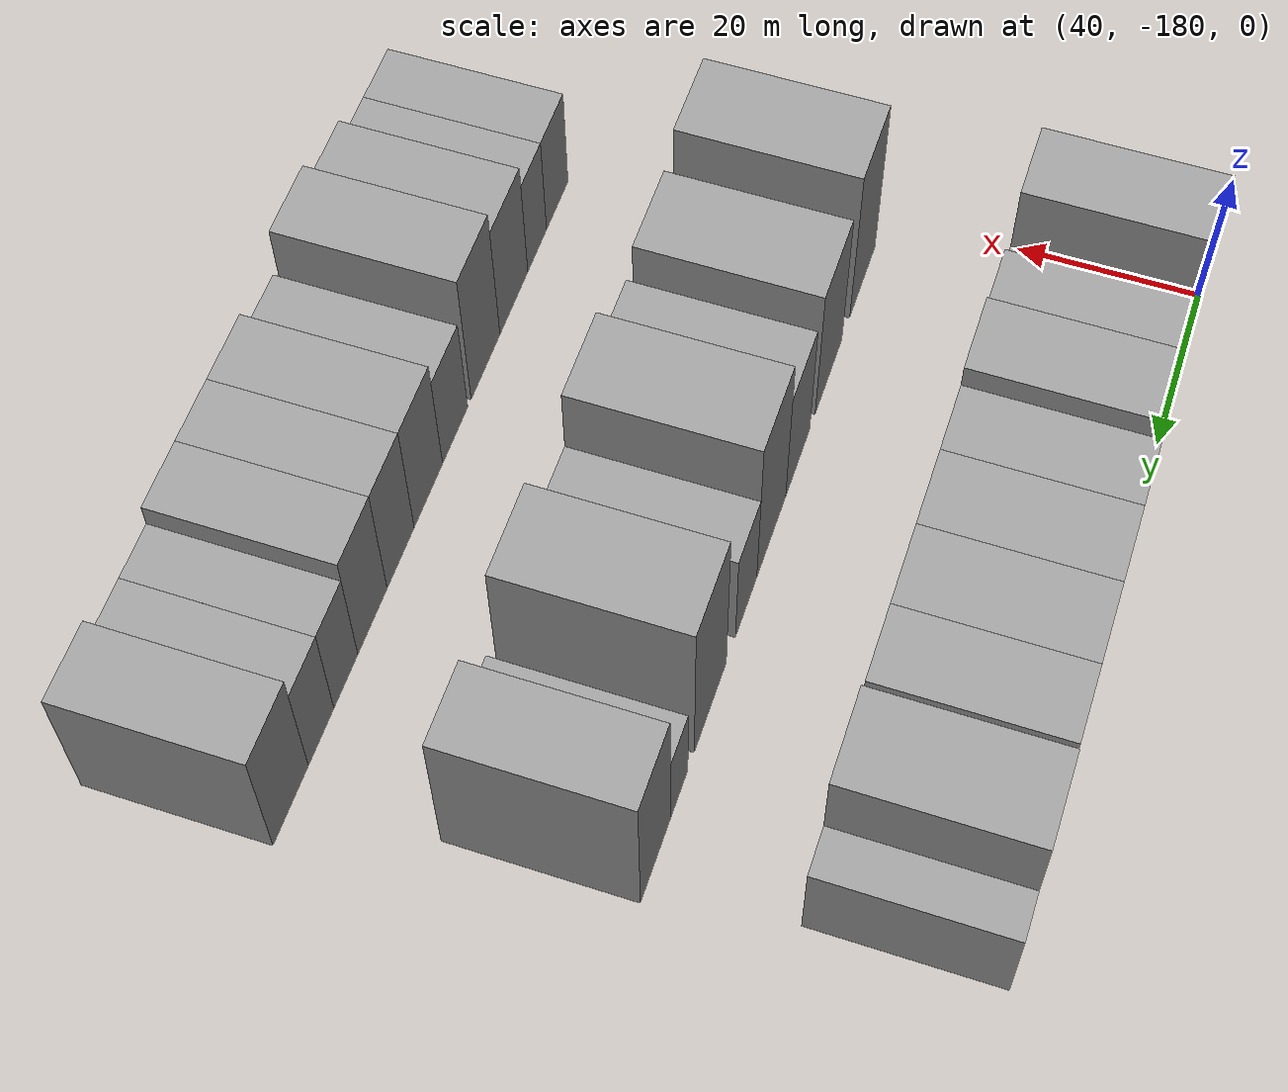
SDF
<sdf version="1.6">
 <world name="default">
  <model name="building_23">
   <static>1</static>
   <pose>50.0000 -175.4392 0 0.000000 0.000000 0.000000</pose>
   <link name="link">
    <pose>0 0 10.50 0 0 0</pose>
    <collision name="collision"><geometry><box><size>20.0000 8.8211 21.0000</size></box></geometry></collision>
    <visual name="visual">
     <cast_shadows>0</cast_shadows>
     <geometry><box><size>20.0000 8.8211 21.0000</size></box></geometry>
     <material>
      <script>
       <uri>model://grey_wall/materials/scripts</uri>
       <uri>model://grey_wall/materials/textures</uri>
       <name>vrc/grey_wall</name>
      </script>
     </material>
    </visual>
   </link>
  </model>
  <model name="building_24">
   <static>1</static>
   <pose>50.0000 -168.4670 0 0.000000 0.000000 0.000000</pose>
   <link name="link">
    <pose>0 0 6.00 0 0 0</pose>
    <collision name="collision"><geometry><box><size>20.0000 5.1233 12.0000</size></box></geometry></collision>
    <visual name="visual">
     <cast_shadows>0</cast_shadows>
     <geometry><box><size>20.0000 5.1233 12.0000</size></box></geometry>
     <material>
      <script>
       <uri>model://grey_wall/materials/scripts</uri>
       <uri>model://grey_wall/materials/textures</uri>
       <name>vrc/grey_wall</name>
      </script>
     </material>
    </visual>
   </link>
  </model>
  <model name="building_25">
   <static>1</static>
   <pose>50.0000 -161.6642 0 0.000000 0.000000 0.000000</pose>
   <link name="link">
    <pose>0 0 9.00 0 0 0</pose>
    <collision name="collision"><geometry><box><size>20.0000 8.4823 18.0000</size></box></geometry></collision>
    <visual name="visual">
     <cast_shadows>0</cast_shadows>
     <geometry><box><size>20.0000 8.4823 18.0000</size></box></geometry>
     <material>
      <script>
       <uri>model://grey_wall/materials/scripts</uri>
       <uri>model://grey_wall/materials/textures</uri>
       <name>vrc/grey_wall</name>
      </script>
     </material>
    </visual>
   </link>
  </model>
  <model name="building_26">
   <static>1</static>
   <pose>50.0000 -153.0441 0 0.000000 0.000000 0.000000</pose>
   <link name="link">
    <pose>0 0 10.50 0 0 0</pose>
    <collision name="collision"><geometry><box><size>20.0000 8.7578 21.0000</size></box></geometry></collision>
    <visual name="visual">
     <cast_shadows>0</cast_shadows>
     <geometry><box><size>20.0000 8.7578 21.0000</size></box></geometry>
     <material>
      <script>
       <uri>model://grey_wall/materials/scripts</uri>
       <uri>model://grey_wall/materials/textures</uri>
       <name>vrc/grey_wall</name>
      </script>
     </material>
    </visual>
   </link>
  </model>
  <model name="building_27">
   <static>1</static>
   <pose>50.0000 -144.7864 0 0.000000 0.000000 0.000000</pose>
   <link name="link">
    <pose>0 0 9.00 0 0 0</pose>
    <collision name="collision"><geometry><box><size>20.0000 7.7576 18.0000</size></box></geometry></collision>
    <visual name="visual">
     <cast_shadows>0</cast_shadows>
     <geometry><box><size>20.0000 7.7576 18.0000</size></box></geometry>
     <material>
      <script>
       <uri>model://grey_wall/materials/scripts</uri>
       <uri>model://grey_wall/materials/textures</uri>
       <name>vrc/grey_wall</name>
      </script>
     </material>
    </visual>
   </link>
  </model>
  <model name="building_28">
   <static>1</static>
   <pose>50.0000 -136.5744 0 0.000000 0.000000 0.000000</pose>
   <link name="link">
    <pose>0 0 9.00 0 0 0</pose>
    <collision name="collision"><geometry><box><size>20.0000 8.6665 18.0000</size></box></geometry></collision>
    <visual name="visual">
     <cast_shadows>0</cast_shadows>
     <geometry><box><size>20.0000 8.6665 18.0000</size></box></geometry>
     <material>
      <script>
       <uri>model://grey_wall/materials/scripts</uri>
       <uri>model://grey_wall/materials/textures</uri>
       <name>vrc/grey_wall</name>
      </script>
     </material>
    </visual>
   </link>
  </model>
  <model name="building_29">
   <static>1</static>
   <pose>50.0000 -127.7467 0 0.000000 0.000000 0.000000</pose>
   <link name="link">
    <pose>0 0 9.00 0 0 0</pose>
    <collision name="collision"><geometry><box><size>20.0000 8.9890 18.0000</size></box></geometry></collision>
    <visual name="visual">
     <cast_shadows>0</cast_shadows>
     <geometry><box><size>20.0000 8.9890 18.0000</size></box></geometry>
     <material>
      <script>
       <uri>model://grey_wall/materials/scripts</uri>
       <uri>model://grey_wall/materials/textures</uri>
       <name>vrc/grey_wall</name>
      </script>
     </material>
    </visual>
   </link>
  </model>
  <model name="building_30">
   <static>1</static>
   <pose>50.0000 -119.0309 0 0.000000 0.000000 0.000000</pose>
   <link name="link">
    <pose>0 0 9.00 0 0 0</pose>
    <collision name="collision"><geometry><box><size>20.0000 8.4425 18.0000</size></box></geometry></collision>
    <visual name="visual">
     <cast_shadows>0</cast_shadows>
     <geometry><box><size>20.0000 8.4425 18.0000</size></box></geometry>
     <material>
      <script>
       <uri>model://grey_wall/materials/scripts</uri>
       <uri>model://grey_wall/materials/textures</uri>
       <name>vrc/grey_wall</name>
      </script>
     </material>
    </visual>
   </link>
  </model>
  <model name="building_31">
   <static>1</static>
   <pose>50.0000 -107.7357 0 0.000000 0.000000 0.000000</pose>
   <link name="link">
    <pose>0 0 10.50 0 0 0</pose>
    <collision name="collision"><geometry><box><size>20.0000 10.1479 21.0000</size></box></geometry></collision>
    <visual name="visual">
     <cast_shadows>0</cast_shadows>
     <geometry><box><size>20.0000 10.1479 21.0000</size></box></geometry>
     <material>
      <script>
       <uri>model://grey_wall/materials/scripts</uri>
       <uri>model://grey_wall/materials/textures</uri>
       <name>vrc/grey_wall</name>
      </script>
     </material>
    </visual>
   </link>
  </model>
  <model name="building_32">
   <static>1</static>
   <pose>50.0000 -100.0869 0 0.000000 0.000000 0.000000</pose>
   <link name="link">
    <pose>0 0 6.00 0 0 0</pose>
    <collision name="collision"><geometry><box><size>20.0000 5.1497 12.0000</size></box></geometry></collision>
    <visual name="visual">
     <cast_shadows>0</cast_shadows>
     <geometry><box><size>20.0000 5.1497 12.0000</size></box></geometry>
     <material>
      <script>
       <uri>model://grey_wall/materials/scripts</uri>
       <uri>model://grey_wall/materials/textures</uri>
       <name>vrc/grey_wall</name>
      </script>
     </material>
    </visual>
   </link>
  </model>
  <model name="building_109">
   <static>1</static>
   <pose>85.0000 -170.3287 0 0.000000 0.000000 0.000000</pose>
   <link name="link">
    <pose>0 0 12.00 0 0 0</pose>
    <collision name="collision"><geometry><box><size>20.0000 9.9184 24.0000</size></box></geometry></collision>
    <visual name="visual">
     <cast_shadows>0</cast_shadows>
     <geometry><box><size>20.0000 9.9184 24.0000</size></box></geometry>
     <material>
      <script>
       <uri>model://grey_wall/materials/scripts</uri>
       <uri>model://grey_wall/materials/textures</uri>
       <name>vrc/grey_wall</name>
      </script>
     </material>
    </visual>
   </link>
  </model>
  <model name="building_110">
   <static>1</static>
   <pose>85.0000 -157.3529 0 0.000000 0.000000 0.000000</pose>
   <link name="link">
    <pose>0 0 10.50 0 0 0</pose>
    <collision name="collision"><geometry><box><size>20.0000 10.0331 21.0000</size></box></geometry></collision>
    <visual name="visual">
     <cast_shadows>0</cast_shadows>
     <geometry><box><size>20.0000 10.0331 21.0000</size></box></geometry>
     <material>
      <script>
       <uri>model://grey_wall/materials/scripts</uri>
       <uri>model://grey_wall/materials/textures</uri>
       <name>vrc/grey_wall</name>
      </script>
     </material>
    </visual>
   </link>
  </model>
  <model name="building_111">
   <static>1</static>
   <pose>85.0000 -146.0318 0 0.000000 0.000000 0.000000</pose>
   <link name="link">
    <pose>0 0 9.00 0 0 0</pose>
    <collision name="collision"><geometry><box><size>20.0000 8.6090 18.0000</size></box></geometry></collision>
    <visual name="visual">
     <cast_shadows>0</cast_shadows>
     <geometry><box><size>20.0000 8.6090 18.0000</size></box></geometry>
     <material>
      <script>
       <uri>model://grey_wall/materials/scripts</uri>
       <uri>model://grey_wall/materials/textures</uri>
       <name>vrc/grey_wall</name>
      </script>
     </material>
    </visual>
   </link>
  </model>
  <model name="building_112">
   <static>1</static>
   <pose>85.0000 -136.7033 0 0.000000 0.000000 0.000000</pose>
   <link name="link">
    <pose>0 0 12.00 0 0 0</pose>
    <collision name="collision"><geometry><box><size>20.0000 10.0480 24.0000</size></box></geometry></collision>
    <visual name="visual">
     <cast_shadows>0</cast_shadows>
     <geometry><box><size>20.0000 10.0480 24.0000</size></box></geometry>
     <material>
      <script>
       <uri>model://grey_wall/materials/scripts</uri>
       <uri>model://grey_wall/materials/textures</uri>
       <name>vrc/grey_wall</name>
      </script>
     </material>
    </visual>
   </link>
  </model>
  <model name="building_113">
   <static>1</static>
   <pose>85.0000 -128.1005 0 0.000000 0.000000 0.000000</pose>
   <link name="link">
    <pose>0 0 7.50 0 0 0</pose>
    <collision name="collision"><geometry><box><size>20.0000 7.1576 15.0000</size></box></geometry></collision>
    <visual name="visual">
     <cast_shadows>0</cast_shadows>
     <geometry><box><size>20.0000 7.1576 15.0000</size></box></geometry>
     <material>
      <script>
       <uri>model://grey_wall/materials/scripts</uri>
       <uri>model://grey_wall/materials/textures</uri>
       <name>vrc/grey_wall</name>
      </script>
     </material>
    </visual>
   </link>
  </model>
  <model name="building_114">
   <static>1</static>
   <pose>85.0000 -116.3873 0 0.000000 0.000000 0.000000</pose>
   <link name="link">
    <pose>0 0 12.00 0 0 0</pose>
    <collision name="collision"><geometry><box><size>20.0000 10.2689 24.0000</size></box></geometry></collision>
    <visual name="visual">
     <cast_shadows>0</cast_shadows>
     <geometry><box><size>20.0000 10.2689 24.0000</size></box></geometry>
     <material>
      <script>
       <uri>model://grey_wall/materials/scripts</uri>
       <uri>model://grey_wall/materials/textures</uri>
       <name>vrc/grey_wall</name>
      </script>
     </material>
    </visual>
   </link>
  </model>
  <model name="building_115">
   <static>1</static>
   <pose>85.0000 -106.5623 0 0.000000 0.000000 0.000000</pose>
   <link name="link">
    <pose>0 0 6.00 0 0 0</pose>
    <collision name="collision"><geometry><box><size>20.0000 5.3810 12.0000</size></box></geometry></collision>
    <visual name="visual">
     <cast_shadows>0</cast_shadows>
     <geometry><box><size>20.0000 5.3810 12.0000</size></box></geometry>
     <material>
      <script>
       <uri>model://grey_wall/materials/scripts</uri>
       <uri>model://grey_wall/materials/textures</uri>
       <name>vrc/grey_wall</name>
      </script>
     </material>
    </visual>
   </link>
  </model>
  <model name="building_116">
   <static>1</static>
   <pose>85.0000 -99.4042 0 0.000000 0.000000 0.000000</pose>
   <link name="link">
    <pose>0 0 10.50 0 0 0</pose>
    <collision name="collision"><geometry><box><size>20.0000 8.9353 21.0000</size></box></geometry></collision>
    <visual name="visual">
     <cast_shadows>0</cast_shadows>
     <geometry><box><size>20.0000 8.9353 21.0000</size></box></geometry>
     <material>
      <script>
       <uri>model://grey_wall/materials/scripts</uri>
       <uri>model://grey_wall/materials/textures</uri>
       <name>vrc/grey_wall</name>
      </script>
     </material>
    </visual>
   </link>
  </model>
  <model name="building_176">
   <static>1</static>
   <pose>120.0000 -169.7988 0 0.000000 0.000000 0.000000</pose>
   <link name="link">
    <pose>0 0 7.50 0 0 0</pose>
    <collision name="collision"><geometry><box><size>20.0000 7.0481 15.0000</size></box></geometry></collision>
    <visual name="visual">
     <cast_shadows>0</cast_shadows>
     <geometry><box><size>20.0000 7.0481 15.0000</size></box></geometry>
     <material>
      <script>
       <uri>model://grey_wall/materials/scripts</uri>
       <uri>model://grey_wall/materials/textures</uri>
       <name>vrc/grey_wall</name>
      </script>
     </material>
    </visual>
   </link>
  </model>
  <model name="building_177">
   <static>1</static>
   <pose>120.0000 -163.2622 0 0.000000 0.000000 0.000000</pose>
   <link name="link">
    <pose>0 0 7.50 0 0 0</pose>
    <collision name="collision"><geometry><box><size>20.0000 6.0252 15.0000</size></box></geometry></collision>
    <visual name="visual">
     <cast_shadows>0</cast_shadows>
     <geometry><box><size>20.0000 6.0252 15.0000</size></box></geometry>
     <material>
      <script>
       <uri>model://grey_wall/materials/scripts</uri>
       <uri>model://grey_wall/materials/textures</uri>
       <name>vrc/grey_wall</name>
      </script>
     </material>
    </visual>
   </link>
  </model>
  <model name="building_178">
   <static>1</static>
   <pose>120.0000 -155.8833 0 0.000000 0.000000 0.000000</pose>
   <link name="link">
    <pose>0 0 9.00 0 0 0</pose>
    <collision name="collision"><geometry><box><size>20.0000 8.7326 18.0000</size></box></geometry></collision>
    <visual name="visual">
     <cast_shadows>0</cast_shadows>
     <geometry><box><size>20.0000 8.7326 18.0000</size></box></geometry>
     <material>
      <script>
       <uri>model://grey_wall/materials/scripts</uri>
       <uri>model://grey_wall/materials/textures</uri>
       <name>vrc/grey_wall</name>
      </script>
     </material>
    </visual>
   </link>
  </model>
  <model name="building_179">
   <static>1</static>
   <pose>120.0000 -147.1377 0 0.000000 0.000000 0.000000</pose>
   <link name="link">
    <pose>0 0 10.50 0 0 0</pose>
    <collision name="collision"><geometry><box><size>20.0000 8.7587 21.0000</size></box></geometry></collision>
    <visual name="visual">
     <cast_shadows>0</cast_shadows>
     <geometry><box><size>20.0000 8.7587 21.0000</size></box></geometry>
     <material>
      <script>
       <uri>model://grey_wall/materials/scripts</uri>
       <uri>model://grey_wall/materials/textures</uri>
       <name>vrc/grey_wall</name>
      </script>
     </material>
    </visual>
   </link>
  </model>
  <model name="building_180">
   <static>1</static>
   <pose>120.0000 -138.0737 0 0.000000 0.000000 0.000000</pose>
   <link name="link">
    <pose>0 0 7.50 0 0 0</pose>
    <collision name="collision"><geometry><box><size>20.0000 7.3692 15.0000</size></box></geometry></collision>
    <visual name="visual">
     <cast_shadows>0</cast_shadows>
     <geometry><box><size>20.0000 7.3692 15.0000</size></box></geometry>
     <material>
      <script>
       <uri>model://grey_wall/materials/scripts</uri>
       <uri>model://grey_wall/materials/textures</uri>
       <name>vrc/grey_wall</name>
      </script>
     </material>
    </visual>
   </link>
  </model>
  <model name="building_181">
   <static>1</static>
   <pose>120.0000 -130.3346 0 0.000000 0.000000 0.000000</pose>
   <link name="link">
    <pose>0 0 9.00 0 0 0</pose>
    <collision name="collision"><geometry><box><size>20.0000 8.1090 18.0000</size></box></geometry></collision>
    <visual name="visual">
     <cast_shadows>0</cast_shadows>
     <geometry><box><size>20.0000 8.1090 18.0000</size></box></geometry>
     <material>
      <script>
       <uri>model://grey_wall/materials/scripts</uri>
       <uri>model://grey_wall/materials/textures</uri>
       <name>vrc/grey_wall</name>
      </script>
     </material>
    </visual>
   </link>
  </model>
  <model name="building_182">
   <static>1</static>
   <pose>120.0000 -122.5364 0 0.000000 0.000000 0.000000</pose>
   <link name="link">
    <pose>0 0 9.00 0 0 0</pose>
    <collision name="collision"><geometry><box><size>20.0000 7.4874 18.0000</size></box></geometry></collision>
    <visual name="visual">
     <cast_shadows>0</cast_shadows>
     <geometry><box><size>20.0000 7.4874 18.0000</size></box></geometry>
     <material>
      <script>
       <uri>model://grey_wall/materials/scripts</uri>
       <uri>model://grey_wall/materials/textures</uri>
       <name>vrc/grey_wall</name>
      </script>
     </material>
    </visual>
   </link>
  </model>
  <model name="building_183">
   <static>1</static>
   <pose>120.0000 -114.8702 0 0.000000 0.000000 0.000000</pose>
   <link name="link">
    <pose>0 0 9.00 0 0 0</pose>
    <collision name="collision"><geometry><box><size>20.0000 7.8450 18.0000</size></box></geometry></collision>
    <visual name="visual">
     <cast_shadows>0</cast_shadows>
     <geometry><box><size>20.0000 7.8450 18.0000</size></box></geometry>
     <material>
      <script>
       <uri>model://grey_wall/materials/scripts</uri>
       <uri>model://grey_wall/materials/textures</uri>
       <name>vrc/grey_wall</name>
      </script>
     </material>
    </visual>
   </link>
  </model>
  <model name="building_184">
   <static>1</static>
   <pose>120.0000 -107.8199 0 0.000000 0.000000 0.000000</pose>
   <link name="link">
    <pose>0 0 7.50 0 0 0</pose>
    <collision name="collision"><geometry><box><size>20.0000 6.2554 15.0000</size></box></geometry></collision>
    <visual name="visual">
     <cast_shadows>0</cast_shadows>
     <geometry><box><size>20.0000 6.2554 15.0000</size></box></geometry>
     <material>
      <script>
       <uri>model://grey_wall/materials/scripts</uri>
       <uri>model://grey_wall/materials/textures</uri>
       <name>vrc/grey_wall</name>
      </script>
     </material>
    </visual>
   </link>
  </model>
  <model name="building_185">
   <static>1</static>
   <pose>120.0000 -101.4493 0 0.000000 0.000000 0.000000</pose>
   <link name="link">
    <pose>0 0 7.50 0 0 0</pose>
    <collision name="collision"><geometry><box><size>20.0000 6.4857 15.0000</size></box></geometry></collision>
    <visual name="visual">
     <cast_shadows>0</cast_shadows>
     <geometry><box><size>20.0000 6.4857 15.0000</size></box></geometry>
     <material>
      <script>
       <uri>model://grey_wall/materials/scripts</uri>
       <uri>model://grey_wall/materials/textures</uri>
       <name>vrc/grey_wall</name>
      </script>
     </material>
    </visual>
   </link>
  </model>
  <model name="building_186">
   <static>1</static>
   <pose>120.0000 -93.8430 0 0.000000 0.000000 0.000000</pose>
   <link name="link">
    <pose>0 0 9.00 0 0 0</pose>
    <collision name="collision"><geometry><box><size>20.0000 8.7269 18.0000</size></box></geometry></collision>
    <visual name="visual">
     <cast_shadows>0</cast_shadows>
     <geometry><box><size>20.0000 8.7269 18.0000</size></box></geometry>
     <material>
      <script>
       <uri>model://grey_wall/materials/scripts</uri>
       <uri>model://grey_wall/materials/textures</uri>
       <name>vrc/grey_wall</name>
      </script>
     </material>
    </visual>
   </link>
  </model>
 </world>
</sdf>
